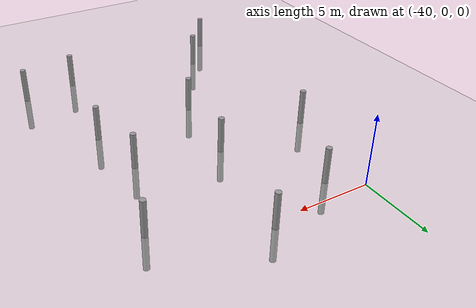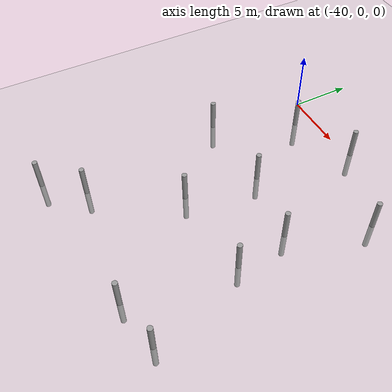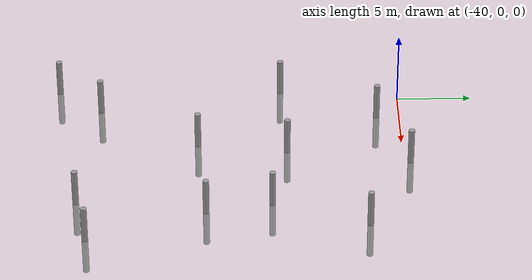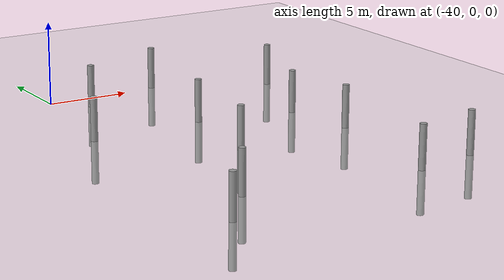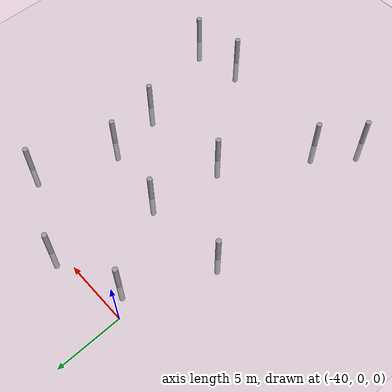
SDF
<sdf version="1.6">
 <world name="default">
  <model name="ground_plane">
   <static>1</static>
   <link name="link">
    <collision name="collision">
     <geometry><plane><normal>0 0 1</normal><size>100 100</size></plane></geometry>
     <surface><friction><ode><mu>100</mu><mu2>50</mu2></ode></friction></surface>
    </collision>
    <visual name="visual">
     <cast_shadows>0</cast_shadows>
     <geometry><plane><normal>0 0 1</normal><size>100 100</size></plane></geometry>
     <material>
      <script><uri>file://media/materials/scripts/gazebo.material</uri><name>Gazebo/Grey</name></script>
     </material>
    </visual>
   </link>
  </model>
  <model name="empty_pillars_8">
   <link name="link">
    <inertial>
     <mass>1</mass>
     <inertia><ixx>0.145833</ixx><ixy>0</ixy><ixz>0</ixz><iyy>0.145833</iyy><iyz>0</iyz><izz>0.125</izz></inertia>
    </inertial>
    <visual name="visual">
     <geometry><cylinder><radius>0.2</radius><length>5</length></cylinder></geometry>
     <material>
      <script><name>Gazebo/Grey</name><uri>file://media/materials/scripts/gazebo.material</uri></script>
      <shader type="vertex"><normal_map>__default__</normal_map></shader>
      <ambient>0.3 0.3 0.3 1</ambient>
      <diffuse>0.7 0.7 0.7 1</diffuse>
      <specular>0.01 0.01 0.01 1</specular>
      <emissive>0 0 0 1</emissive>
     </material>
    </visual>
    <collision name="collision">
     <geometry><cylinder><radius>0.05</radius><length>5</length></cylinder></geometry>
     <surface>
      <friction>
       <ode><mu>1</mu><mu2>1</mu2><fdir1>0 0 0</fdir1><slip1>0</slip1><slip2>0</slip2></ode>
       <torsional>
        <coefficient>1</coefficient>
        <patch_radius>0</patch_radius>
        <surface_radius>0</surface_radius>
        <use_patch_radius>1</use_patch_radius>
        <ode><slip>0</slip></ode>
       </torsional>
      </friction>
      <bounce><restitution_coefficient>0</restitution_coefficient><threshold>1e+06</threshold></bounce>
      <contact>
       <collide_without_contact>0</collide_without_contact>
       <collide_without_contact_bitmask>1</collide_without_contact_bitmask>
       <collide_bitmask>1</collide_bitmask>
       <ode>
        <soft_cfm>0</soft_cfm>
        <soft_erp>0.2</soft_erp>
        <kp>1e+13</kp>
        <kd>1</kd>
        <max_vel>0.01</max_vel>
        <min_depth>0</min_depth>
       </ode>
       <bullet>
        <split_impulse>1</split_impulse>
        <split_impulse_penetration_threshold>-0.01</split_impulse_penetration_threshold>
        <soft_cfm>0</soft_cfm>
        <soft_erp>0.2</soft_erp>
        <kp>1e+13</kp>
        <kd>1</kd>
       </bullet>
      </contact>
     </surface>
    </collision>
   </link>
   <model name="empty_pillar">
    <link name="link">
     <inertial>
      <mass>1</mass>
      <inertia><ixx>0.145833</ixx><ixy>0</ixy><ixz>0</ixz><iyy>0.145833</iyy><iyz>0</iyz><izz>0.125</izz></inertia>
     </inertial>
     <visual name="visual">
      <geometry><cylinder><radius>0.2</radius><length>5</length></cylinder></geometry>
      <material>
       <script><name>Gazebo/Grey</name><uri>file://media/materials/scripts/gazebo.material</uri></script>
       <shader type="vertex"><normal_map>__default__</normal_map></shader>
       <ambient>0.3 0.3 0.3 1</ambient>
       <diffuse>0.7 0.7 0.7 1</diffuse>
       <specular>0.01 0.01 0.01 1</specular>
       <emissive>0 0 0 1</emissive>
      </material>
     </visual>
     <collision name="collision">
      <geometry><cylinder><radius>0.05</radius><length>5</length></cylinder></geometry>
      <surface>
       <friction>
        <ode><mu>1</mu><mu2>1</mu2><fdir1>0 0 0</fdir1><slip1>0</slip1><slip2>0</slip2></ode>
        <torsional>
         <coefficient>1</coefficient>
         <patch_radius>0</patch_radius>
         <surface_radius>0</surface_radius>
         <use_patch_radius>1</use_patch_radius>
         <ode><slip>0</slip></ode>
        </torsional>
       </friction>
       <bounce><restitution_coefficient>0</restitution_coefficient><threshold>1e+06</threshold></bounce>
       <contact>
        <collide_without_contact>0</collide_without_contact>
        <collide_without_contact_bitmask>1</collide_without_contact_bitmask>
        <collide_bitmask>1</collide_bitmask>
        <ode>
         <soft_cfm>0</soft_cfm>
         <soft_erp>0.2</soft_erp>
         <kp>1e+13</kp>
         <kd>1</kd>
         <max_vel>0.01</max_vel>
         <min_depth>0</min_depth>
        </ode>
        <bullet>
         <split_impulse>1</split_impulse>
         <split_impulse_penetration_threshold>-0.01</split_impulse_penetration_threshold>
         <soft_cfm>0</soft_cfm>
         <soft_erp>0.2</soft_erp>
         <kp>1e+13</kp>
         <kd>1</kd>
        </bullet>
       </contact>
      </surface>
     </collision>
    </link>
    <static>0</static>
    <pose>-3.84527 -0.717439 0 0 -0 0</pose>
   </model>
   <model name="empty_pillar_clone_14">
    <link name="link">
     <inertial>
      <mass>1</mass>
      <inertia><ixx>0.145833</ixx><ixy>0</ixy><ixz>0</ixz><iyy>0.145833</iyy><iyz>0</iyz><izz>0.125</izz></inertia>
     </inertial>
     <visual name="visual">
      <geometry><cylinder><radius>0.2</radius><length>5</length></cylinder></geometry>
      <material>
       <script><name>Gazebo/Grey</name><uri>file://media/materials/scripts/gazebo.material</uri></script>
       <shader type="vertex"><normal_map>__default__</normal_map></shader>
       <ambient>0.3 0.3 0.3 1</ambient>
       <diffuse>0.7 0.7 0.7 1</diffuse>
       <specular>0.01 0.01 0.01 1</specular>
       <emissive>0 0 0 1</emissive>
      </material>
     </visual>
     <collision name="collision">
      <geometry><cylinder><radius>0.05</radius><length>5</length></cylinder></geometry>
      <surface>
       <friction>
        <ode><mu>1</mu><mu2>1</mu2><fdir1>0 0 0</fdir1><slip1>0</slip1><slip2>0</slip2></ode>
        <torsional>
         <coefficient>1</coefficient>
         <patch_radius>0</patch_radius>
         <surface_radius>0</surface_radius>
         <use_patch_radius>1</use_patch_radius>
         <ode><slip>0</slip></ode>
        </torsional>
       </friction>
       <bounce><restitution_coefficient>0</restitution_coefficient><threshold>1e+06</threshold></bounce>
       <contact>
        <collide_without_contact>0</collide_without_contact>
        <collide_without_contact_bitmask>1</collide_without_contact_bitmask>
        <collide_bitmask>1</collide_bitmask>
        <ode>
         <soft_cfm>0</soft_cfm>
         <soft_erp>0.2</soft_erp>
         <kp>1e+13</kp>
         <kd>1</kd>
         <max_vel>0.01</max_vel>
         <min_depth>0</min_depth>
        </ode>
        <bullet>
         <split_impulse>1</split_impulse>
         <split_impulse_penetration_threshold>-0.01</split_impulse_penetration_threshold>
         <soft_cfm>0</soft_cfm>
         <soft_erp>0.2</soft_erp>
         <kp>1e+13</kp>
         <kd>1</kd>
        </bullet>
       </contact>
      </surface>
     </collision>
    </link>
    <static>0</static>
    <pose>-14.0146 0.646152 0 0 -0 0</pose>
   </model>
   <model name="empty_pillar_clone_16">
    <link name="link">
     <inertial>
      <mass>1</mass>
      <inertia><ixx>0.145833</ixx><ixy>0</ixy><ixz>0</ixz><iyy>0.145833</iyy><iyz>0</iyz><izz>0.125</izz></inertia>
     </inertial>
     <visual name="visual">
      <geometry><cylinder><radius>0.2</radius><length>5</length></cylinder></geometry>
      <material>
       <script><name>Gazebo/Grey</name><uri>file://media/materials/scripts/gazebo.material</uri></script>
       <shader type="vertex"><normal_map>__default__</normal_map></shader>
       <ambient>0.3 0.3 0.3 1</ambient>
       <diffuse>0.7 0.7 0.7 1</diffuse>
       <specular>0.01 0.01 0.01 1</specular>
       <emissive>0 0 0 1</emissive>
      </material>
     </visual>
     <collision name="collision">
      <geometry><cylinder><radius>0.05</radius><length>5</length></cylinder></geometry>
      <surface>
       <friction>
        <ode><mu>1</mu><mu2>1</mu2><fdir1>0 0 0</fdir1><slip1>0</slip1><slip2>0</slip2></ode>
        <torsional>
         <coefficient>1</coefficient>
         <patch_radius>0</patch_radius>
         <surface_radius>0</surface_radius>
         <use_patch_radius>1</use_patch_radius>
         <ode><slip>0</slip></ode>
        </torsional>
       </friction>
       <bounce><restitution_coefficient>0</restitution_coefficient><threshold>1e+06</threshold></bounce>
       <contact>
        <collide_without_contact>0</collide_without_contact>
        <collide_without_contact_bitmask>1</collide_without_contact_bitmask>
        <collide_bitmask>1</collide_bitmask>
        <ode>
         <soft_cfm>0</soft_cfm>
         <soft_erp>0.2</soft_erp>
         <kp>1e+13</kp>
         <kd>1</kd>
         <max_vel>0.01</max_vel>
         <min_depth>0</min_depth>
        </ode>
        <bullet>
         <split_impulse>1</split_impulse>
         <split_impulse_penetration_threshold>-0.01</split_impulse_penetration_threshold>
         <soft_cfm>0</soft_cfm>
         <soft_erp>0.2</soft_erp>
         <kp>1e+13</kp>
         <kd>1</kd>
        </bullet>
       </contact>
      </surface>
     </collision>
    </link>
    <static>0</static>
    <pose>-9.20789 13.0504 0 0 -0 0</pose>
   </model>
   <model name="empty_pillar_clone_17">
    <link name="link">
     <inertial>
      <mass>1</mass>
      <inertia><ixx>0.145833</ixx><ixy>0</ixy><ixz>0</ixz><iyy>0.145833</iyy><iyz>0</iyz><izz>0.125</izz></inertia>
     </inertial>
     <visual name="visual">
      <geometry><cylinder><radius>0.2</radius><length>5</length></cylinder></geometry>
      <material>
       <script><name>Gazebo/Grey</name><uri>file://media/materials/scripts/gazebo.material</uri></script>
       <shader type="vertex"><normal_map>__default__</normal_map></shader>
       <ambient>0.3 0.3 0.3 1</ambient>
       <diffuse>0.7 0.7 0.7 1</diffuse>
       <specular>0.01 0.01 0.01 1</specular>
       <emissive>0 0 0 1</emissive>
      </material>
     </visual>
     <collision name="collision">
      <geometry><cylinder><radius>0.05</radius><length>5</length></cylinder></geometry>
      <surface>
       <friction>
        <ode><mu>1</mu><mu2>1</mu2><fdir1>0 0 0</fdir1><slip1>0</slip1><slip2>0</slip2></ode>
        <torsional>
         <coefficient>1</coefficient>
         <patch_radius>0</patch_radius>
         <surface_radius>0</surface_radius>
         <use_patch_radius>1</use_patch_radius>
         <ode><slip>0</slip></ode>
        </torsional>
       </friction>
       <bounce><restitution_coefficient>0</restitution_coefficient><threshold>1e+06</threshold></bounce>
       <contact>
        <collide_without_contact>0</collide_without_contact>
        <collide_without_contact_bitmask>1</collide_without_contact_bitmask>
        <collide_bitmask>1</collide_bitmask>
        <ode>
         <soft_cfm>0</soft_cfm>
         <soft_erp>0.2</soft_erp>
         <kp>1e+13</kp>
         <kd>1</kd>
         <max_vel>0.01</max_vel>
         <min_depth>0</min_depth>
        </ode>
        <bullet>
         <split_impulse>1</split_impulse>
         <split_impulse_penetration_threshold>-0.01</split_impulse_penetration_threshold>
         <soft_cfm>0</soft_cfm>
         <soft_erp>0.2</soft_erp>
         <kp>1e+13</kp>
         <kd>1</kd>
        </bullet>
       </contact>
      </surface>
     </collision>
    </link>
    <static>0</static>
    <pose>-16.0449 12.755 0 0 -0 0</pose>
   </model>
   <model name="empty_pillar_clone_19">
    <link name="link">
     <inertial>
      <mass>1</mass>
      <inertia><ixx>0.145833</ixx><ixy>0</ixy><ixz>0</ixz><iyy>0.145833</iyy><iyz>0</iyz><izz>0.125</izz></inertia>
     </inertial>
     <visual name="visual">
      <geometry><cylinder><radius>0.2</radius><length>5</length></cylinder></geometry>
      <material>
       <script><name>Gazebo/Grey</name><uri>file://media/materials/scripts/gazebo.material</uri></script>
       <shader type="vertex"><normal_map>__default__</normal_map></shader>
       <ambient>0.3 0.3 0.3 1</ambient>
       <diffuse>0.7 0.7 0.7 1</diffuse>
       <specular>0.01 0.01 0.01 1</specular>
       <emissive>0 0 0 1</emissive>
      </material>
     </visual>
     <collision name="collision">
      <geometry><cylinder><radius>0.05</radius><length>5</length></cylinder></geometry>
      <surface>
       <friction>
        <ode><mu>1</mu><mu2>1</mu2><fdir1>0 0 0</fdir1><slip1>0</slip1><slip2>0</slip2></ode>
        <torsional>
         <coefficient>1</coefficient>
         <patch_radius>0</patch_radius>
         <surface_radius>0</surface_radius>
         <use_patch_radius>1</use_patch_radius>
         <ode><slip>0</slip></ode>
        </torsional>
       </friction>
       <bounce><restitution_coefficient>0</restitution_coefficient><threshold>1e+06</threshold></bounce>
       <contact>
        <collide_without_contact>0</collide_without_contact>
        <collide_without_contact_bitmask>1</collide_without_contact_bitmask>
        <collide_bitmask>1</collide_bitmask>
        <ode>
         <soft_cfm>0</soft_cfm>
         <soft_erp>0.2</soft_erp>
         <kp>1e+13</kp>
         <kd>1</kd>
         <max_vel>0.01</max_vel>
         <min_depth>0</min_depth>
        </ode>
        <bullet>
         <split_impulse>1</split_impulse>
         <split_impulse_penetration_threshold>-0.01</split_impulse_penetration_threshold>
         <soft_cfm>0</soft_cfm>
         <soft_erp>0.2</soft_erp>
         <kp>1e+13</kp>
         <kd>1</kd>
        </bullet>
       </contact>
      </surface>
     </collision>
    </link>
    <static>0</static>
    <pose>-10.0146 7.15966 0 0 -0 0</pose>
   </model>
   <model name="empty_pillar_clone_20">
    <link name="link">
     <inertial>
      <mass>1</mass>
      <inertia><ixx>0.145833</ixx><ixy>0</ixy><ixz>0</ixz><iyy>0.145833</iyy><iyz>0</iyz><izz>0.125</izz></inertia>
     </inertial>
     <visual name="visual">
      <geometry><cylinder><radius>0.2</radius><length>5</length></cylinder></geometry>
      <material>
       <script><name>Gazebo/Grey</name><uri>file://media/materials/scripts/gazebo.material</uri></script>
       <shader type="vertex"><normal_map>__default__</normal_map></shader>
       <ambient>0.3 0.3 0.3 1</ambient>
       <diffuse>0.7 0.7 0.7 1</diffuse>
       <specular>0.01 0.01 0.01 1</specular>
       <emissive>0 0 0 1</emissive>
      </material>
     </visual>
     <collision name="collision">
      <geometry><cylinder><radius>0.05</radius><length>5</length></cylinder></geometry>
      <surface>
       <friction>
        <ode><mu>1</mu><mu2>1</mu2><fdir1>0 0 0</fdir1><slip1>0</slip1><slip2>0</slip2></ode>
        <torsional>
         <coefficient>1</coefficient>
         <patch_radius>0</patch_radius>
         <surface_radius>0</surface_radius>
         <use_patch_radius>1</use_patch_radius>
         <ode><slip>0</slip></ode>
        </torsional>
       </friction>
       <bounce><restitution_coefficient>0</restitution_coefficient><threshold>1e+06</threshold></bounce>
       <contact>
        <collide_without_contact>0</collide_without_contact>
        <collide_without_contact_bitmask>1</collide_without_contact_bitmask>
        <collide_bitmask>1</collide_bitmask>
        <ode>
         <soft_cfm>0</soft_cfm>
         <soft_erp>0.2</soft_erp>
         <kp>1e+13</kp>
         <kd>1</kd>
         <max_vel>0.01</max_vel>
         <min_depth>0</min_depth>
        </ode>
        <bullet>
         <split_impulse>1</split_impulse>
         <split_impulse_penetration_threshold>-0.01</split_impulse_penetration_threshold>
         <soft_cfm>0</soft_cfm>
         <soft_erp>0.2</soft_erp>
         <kp>1e+13</kp>
         <kd>1</kd>
        </bullet>
       </contact>
      </surface>
     </collision>
    </link>
    <static>0</static>
    <pose>-13.0146 19.1597 0 0 -0 0</pose>
   </model>
   <model name="empty_pillar_clone_23">
    <link name="link">
     <inertial>
      <mass>1</mass>
      <inertia><ixx>0.145833</ixx><ixy>0</ixy><ixz>0</ixz><iyy>0.145833</iyy><iyz>0</iyz><izz>0.125</izz></inertia>
     </inertial>
     <visual name="visual">
      <geometry><cylinder><radius>0.2</radius><length>5</length></cylinder></geometry>
      <material>
       <script><name>Gazebo/Grey</name><uri>file://media/materials/scripts/gazebo.material</uri></script>
       <shader type="vertex"><normal_map>__default__</normal_map></shader>
       <ambient>0.3 0.3 0.3 1</ambient>
       <diffuse>0.7 0.7 0.7 1</diffuse>
       <specular>0.01 0.01 0.01 1</specular>
       <emissive>0 0 0 1</emissive>
      </material>
     </visual>
     <collision name="collision">
      <geometry><cylinder><radius>0.05</radius><length>5</length></cylinder></geometry>
      <surface>
       <friction>
        <ode><mu>1</mu><mu2>1</mu2><fdir1>0 0 0</fdir1><slip1>0</slip1><slip2>0</slip2></ode>
        <torsional>
         <coefficient>1</coefficient>
         <patch_radius>0</patch_radius>
         <surface_radius>0</surface_radius>
         <use_patch_radius>1</use_patch_radius>
         <ode><slip>0</slip></ode>
        </torsional>
       </friction>
       <bounce><restitution_coefficient>0</restitution_coefficient><threshold>1e+06</threshold></bounce>
       <contact>
        <collide_without_contact>0</collide_without_contact>
        <collide_without_contact_bitmask>1</collide_without_contact_bitmask>
        <collide_bitmask>1</collide_bitmask>
        <ode>
         <soft_cfm>0</soft_cfm>
         <soft_erp>0.2</soft_erp>
         <kp>1e+13</kp>
         <kd>1</kd>
         <max_vel>0.01</max_vel>
         <min_depth>0</min_depth>
        </ode>
        <bullet>
         <split_impulse>1</split_impulse>
         <split_impulse_penetration_threshold>-0.01</split_impulse_penetration_threshold>
         <soft_cfm>0</soft_cfm>
         <soft_erp>0.2</soft_erp>
         <kp>1e+13</kp>
         <kd>1</kd>
        </bullet>
       </contact>
      </surface>
     </collision>
    </link>
    <static>0</static>
    <pose>-1.21984 18.1273 0 0 -0 0</pose>
   </model>
   <model name="empty_pillar_clone_24">
    <link name="link">
     <inertial>
      <mass>1</mass>
      <inertia><ixx>0.145833</ixx><ixy>0</ixy><ixz>0</ixz><iyy>0.145833</iyy><iyz>0</iyz><izz>0.125</izz></inertia>
     </inertial>
     <visual name="visual">
      <geometry><cylinder><radius>0.2</radius><length>5</length></cylinder></geometry>
      <material>
       <script><name>Gazebo/Grey</name><uri>file://media/materials/scripts/gazebo.material</uri></script>
       <shader type="vertex"><normal_map>__default__</normal_map></shader>
       <ambient>0.3 0.3 0.3 1</ambient>
       <diffuse>0.7 0.7 0.7 1</diffuse>
       <specular>0.01 0.01 0.01 1</specular>
       <emissive>0 0 0 1</emissive>
      </material>
     </visual>
     <collision name="collision">
      <geometry><cylinder><radius>0.05</radius><length>5</length></cylinder></geometry>
      <surface>
       <friction>
        <ode><mu>1</mu><mu2>1</mu2><fdir1>0 0 0</fdir1><slip1>0</slip1><slip2>0</slip2></ode>
        <torsional>
         <coefficient>1</coefficient>
         <patch_radius>0</patch_radius>
         <surface_radius>0</surface_radius>
         <use_patch_radius>1</use_patch_radius>
         <ode><slip>0</slip></ode>
        </torsional>
       </friction>
       <bounce><restitution_coefficient>0</restitution_coefficient><threshold>1e+06</threshold></bounce>
       <contact>
        <collide_without_contact>0</collide_without_contact>
        <collide_without_contact_bitmask>1</collide_without_contact_bitmask>
        <collide_bitmask>1</collide_bitmask>
        <ode>
         <soft_cfm>0</soft_cfm>
         <soft_erp>0.2</soft_erp>
         <kp>1e+13</kp>
         <kd>1</kd>
         <max_vel>0.01</max_vel>
         <min_depth>0</min_depth>
        </ode>
        <bullet>
         <split_impulse>1</split_impulse>
         <split_impulse_penetration_threshold>-0.01</split_impulse_penetration_threshold>
         <soft_cfm>0</soft_cfm>
         <soft_erp>0.2</soft_erp>
         <kp>1e+13</kp>
         <kd>1</kd>
        </bullet>
       </contact>
      </surface>
     </collision>
    </link>
    <static>0</static>
    <pose>-3.46957 11.9413 0 0 -0 0</pose>
   </model>
   <model name="empty_pillar_clone_25">
    <link name="link">
     <inertial>
      <mass>1</mass>
      <inertia><ixx>0.145833</ixx><ixy>0</ixy><ixz>0</ixz><iyy>0.145833</iyy><iyz>0</iyz><izz>0.125</izz></inertia>
     </inertial>
     <visual name="visual">
      <geometry><cylinder><radius>0.2</radius><length>5</length></cylinder></geometry>
      <material>
       <script><name>Gazebo/Grey</name><uri>file://media/materials/scripts/gazebo.material</uri></script>
       <shader type="vertex"><normal_map>__default__</normal_map></shader>
       <ambient>0.3 0.3 0.3 1</ambient>
       <diffuse>0.7 0.7 0.7 1</diffuse>
       <specular>0.01 0.01 0.01 1</specular>
       <emissive>0 0 0 1</emissive>
      </material>
     </visual>
     <collision name="collision">
      <geometry><cylinder><radius>0.05</radius><length>5</length></cylinder></geometry>
      <surface>
       <friction>
        <ode><mu>1</mu><mu2>1</mu2><fdir1>0 0 0</fdir1><slip1>0</slip1><slip2>0</slip2></ode>
        <torsional>
         <coefficient>1</coefficient>
         <patch_radius>0</patch_radius>
         <surface_radius>0</surface_radius>
         <use_patch_radius>1</use_patch_radius>
         <ode><slip>0</slip></ode>
        </torsional>
       </friction>
       <bounce><restitution_coefficient>0</restitution_coefficient><threshold>1e+06</threshold></bounce>
       <contact>
        <collide_without_contact>0</collide_without_contact>
        <collide_without_contact_bitmask>1</collide_without_contact_bitmask>
        <collide_bitmask>1</collide_bitmask>
        <ode>
         <soft_cfm>0</soft_cfm>
         <soft_erp>0.2</soft_erp>
         <kp>1e+13</kp>
         <kd>1</kd>
         <max_vel>0.01</max_vel>
         <min_depth>0</min_depth>
        </ode>
        <bullet>
         <split_impulse>1</split_impulse>
         <split_impulse_penetration_threshold>-0.01</split_impulse_penetration_threshold>
         <soft_cfm>0</soft_cfm>
         <soft_erp>0.2</soft_erp>
         <kp>1e+13</kp>
         <kd>1</kd>
        </bullet>
       </contact>
      </surface>
     </collision>
    </link>
    <static>0</static>
    <pose>-7.86239 21.1314 0 0 -0 0</pose>
   </model>
   <model name="empty_pillar_clone_38">
    <link name="link">
     <inertial>
      <mass>1</mass>
      <inertia><ixx>0.145833</ixx><ixy>0</ixy><ixz>0</ixz><iyy>0.145833</iyy><iyz>0</iyz><izz>0.125</izz></inertia>
     </inertial>
     <visual name="visual">
      <geometry><cylinder><radius>0.2</radius><length>5</length></cylinder></geometry>
      <material>
       <script><name>Gazebo/Grey</name><uri>file://media/materials/scripts/gazebo.material</uri></script>
       <shader type="vertex"><normal_map>__default__</normal_map></shader>
       <ambient>0.3 0.3 0.3 1</ambient>
       <diffuse>0.7 0.7 0.7 1</diffuse>
       <specular>0.01 0.01 0.01 1</specular>
       <emissive>0 0 0 1</emissive>
      </material>
     </visual>
     <collision name="collision">
      <geometry><cylinder><radius>0.05</radius><length>5</length></cylinder></geometry>
      <surface>
       <friction>
        <ode><mu>1</mu><mu2>1</mu2><fdir1>0 0 0</fdir1><slip1>0</slip1><slip2>0</slip2></ode>
        <torsional>
         <coefficient>1</coefficient>
         <patch_radius>0</patch_radius>
         <surface_radius>0</surface_radius>
         <use_patch_radius>1</use_patch_radius>
         <ode><slip>0</slip></ode>
        </torsional>
       </friction>
       <bounce><restitution_coefficient>0</restitution_coefficient><threshold>1e+06</threshold></bounce>
       <contact>
        <collide_without_contact>0</collide_without_contact>
        <collide_without_contact_bitmask>1</collide_without_contact_bitmask>
        <collide_bitmask>1</collide_bitmask>
        <ode>
         <soft_cfm>0</soft_cfm>
         <soft_erp>0.2</soft_erp>
         <kp>1e+13</kp>
         <kd>1</kd>
         <max_vel>0.01</max_vel>
         <min_depth>0</min_depth>
        </ode>
        <bullet>
         <split_impulse>1</split_impulse>
         <split_impulse_penetration_threshold>-0.01</split_impulse_penetration_threshold>
         <soft_cfm>0</soft_cfm>
         <soft_erp>0.2</soft_erp>
         <kp>1e+13</kp>
         <kd>1</kd>
        </bullet>
       </contact>
      </surface>
     </collision>
    </link>
    <static>0</static>
    <pose>-16.33 -2.21607 0 0 -0 0</pose>
   </model>
   <model name="empty_pillar_clone_56">
    <link name="link">
     <inertial>
      <mass>1</mass>
      <inertia><ixx>0.145833</ixx><ixy>0</ixy><ixz>0</ixz><iyy>0.145833</iyy><iyz>0</iyz><izz>0.125</izz></inertia>
     </inertial>
     <visual name="visual">
      <geometry><cylinder><radius>0.2</radius><length>5</length></cylinder></geometry>
      <material>
       <script><name>Gazebo/Grey</name><uri>file://media/materials/scripts/gazebo.material</uri></script>
       <shader type="vertex"><normal_map>__default__</normal_map></shader>
       <ambient>0.3 0.3 0.3 1</ambient>
       <diffuse>0.7 0.7 0.7 1</diffuse>
       <specular>0.01 0.01 0.01 1</specular>
       <emissive>0 0 0 1</emissive>
      </material>
     </visual>
     <collision name="collision">
      <geometry><cylinder><radius>0.05</radius><length>5</length></cylinder></geometry>
      <surface>
       <friction>
        <ode><mu>1</mu><mu2>1</mu2><fdir1>0 0 0</fdir1><slip1>0</slip1><slip2>0</slip2></ode>
        <torsional>
         <coefficient>1</coefficient>
         <patch_radius>0</patch_radius>
         <surface_radius>0</surface_radius>
         <use_patch_radius>1</use_patch_radius>
         <ode><slip>0</slip></ode>
        </torsional>
       </friction>
       <bounce><restitution_coefficient>0</restitution_coefficient><threshold>1e+06</threshold></bounce>
       <contact>
        <collide_without_contact>0</collide_without_contact>
        <collide_without_contact_bitmask>1</collide_without_contact_bitmask>
        <collide_bitmask>1</collide_bitmask>
        <ode>
         <soft_cfm>0</soft_cfm>
         <soft_erp>0.2</soft_erp>
         <kp>1e+13</kp>
         <kd>1</kd>
         <max_vel>0.01</max_vel>
         <min_depth>0</min_depth>
        </ode>
        <bullet>
         <split_impulse>1</split_impulse>
         <split_impulse_penetration_threshold>-0.01</split_impulse_penetration_threshold>
         <soft_cfm>0</soft_cfm>
         <soft_erp>0.2</soft_erp>
         <kp>1e+13</kp>
         <kd>1</kd>
        </bullet>
       </contact>
      </surface>
     </collision>
    </link>
    <static>0</static>
    <pose>-2.69782 7.67053 0 0 -0 0</pose>
   </model>
   <static>0</static>
   <pose>-25.0415 -20.6705 0 0 -0 0</pose>
  </model>
 </world>
</sdf>
